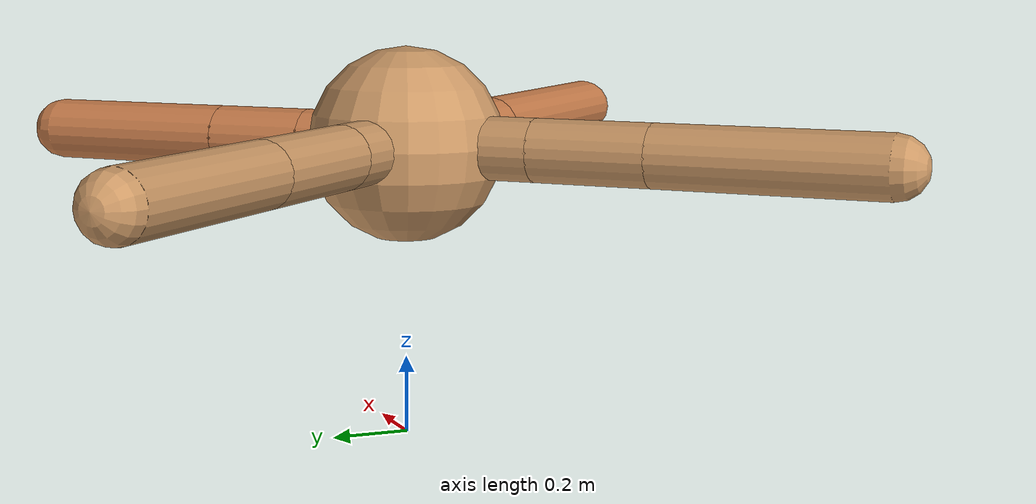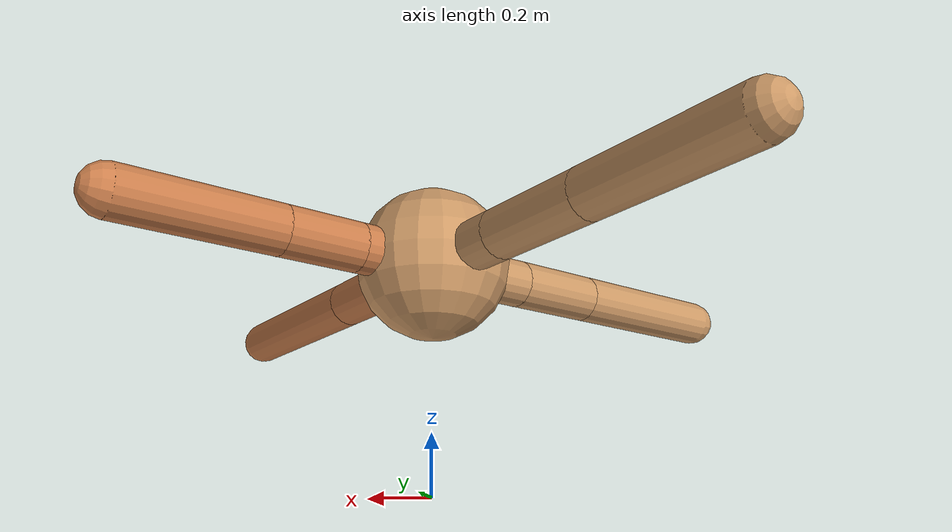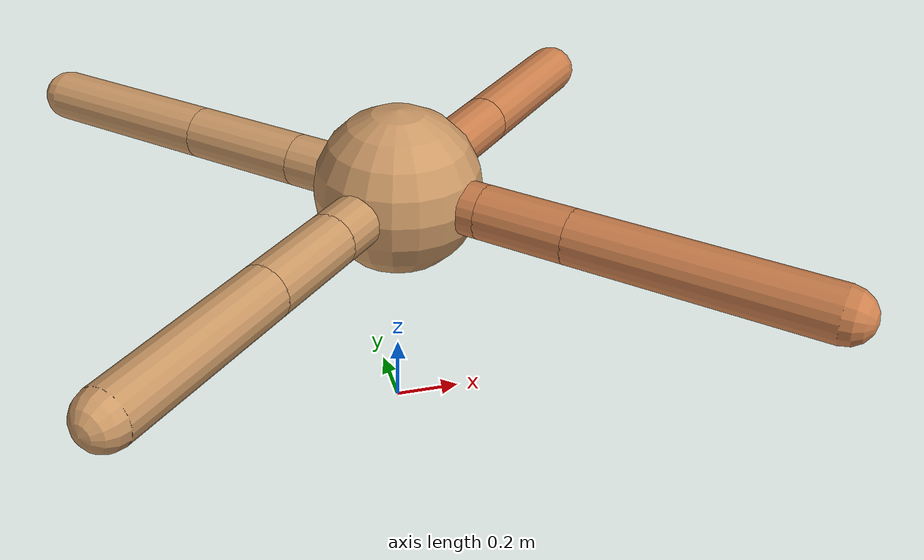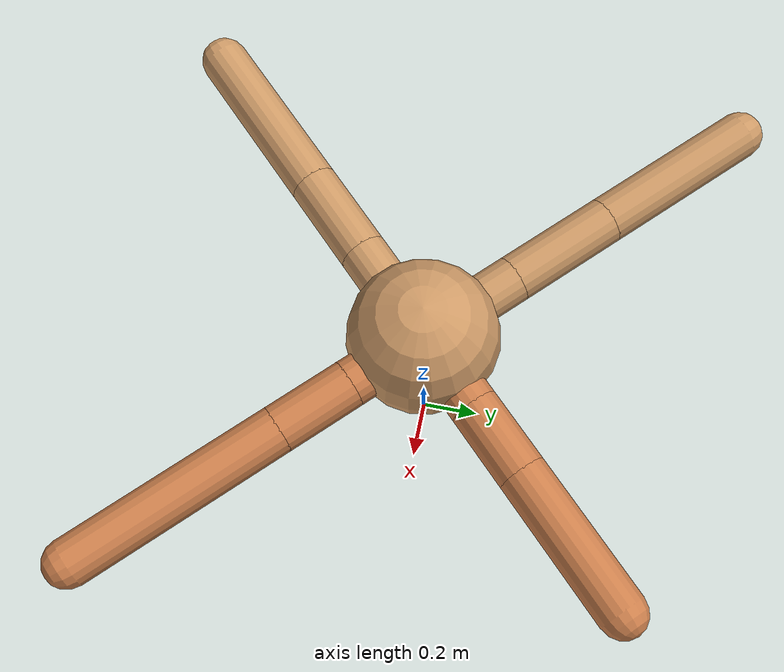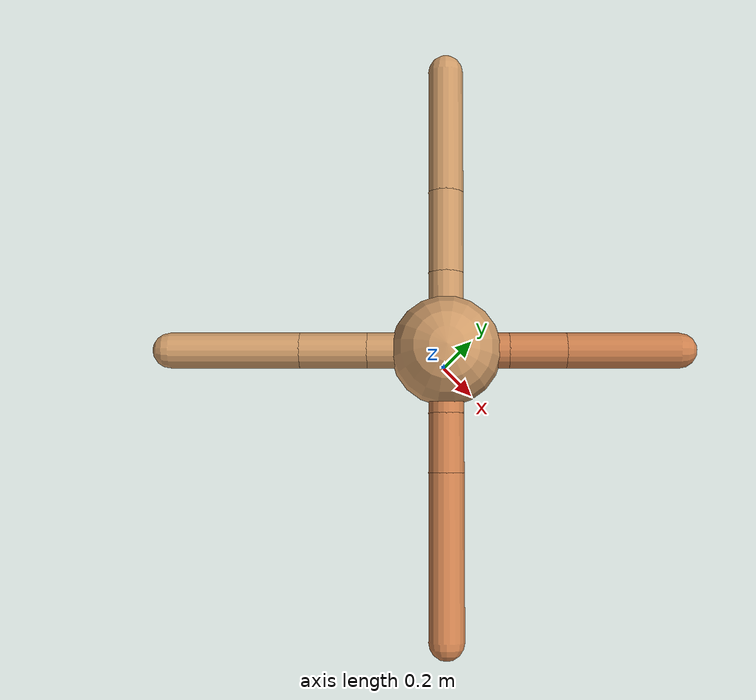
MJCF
<mujoco model="ant">
  <compiler angle="degree" coordinate="local" inertiafromgeom="true" />
  <option integrator="RK4" timestep="0.01" />
  <custom>
    <numeric data="0.0 0.0 0.55 1.0 0.0 0.0 0.0 0.0 1.0 0.0 -1.0 0.0 -1.0 0.0 1.0" name="init_qpos" />
  </custom>
  <default>
    <joint armature="1" damping="1" limited="true" />
    <geom conaffinity="0" condim="3" density="5.0" friction="1.5 0.1 0.1" margin="0.01" rgba="0.8 0.6 0.4 1" />
  </default>
  <worldbody>
    <body name="torso" pos="0 0 0.75">
      <geom name="torso_geom" pos="0 0 0" size="0.25" type="sphere" />

      <body name="front_left_leg" pos="0 0 0">
        <geom fromto="0.0 0.0 0.0 0.2 0.2 0.0" name="aux_1_geom" size="0.08" type="capsule" rgba=".8 .5 .3 1" />
        <body name="aux_1" pos="0.2 0.2 0.0">
          <joint axis="0 0 1" name="hip_1" pos="0.0 0.0 0.0" range="-40 40" type="hinge" />
          <geom fromto="0.0 0.0 0.0 0.18119450522242317 0.18119450522242317 0.0" name="left_leg_geom" size="0.08" type="capsule" rgba=".8 .5 .3 1" />
          <body pos="0.18119450522242317 0.18119450522242317 0.0" name="front_left_foot">
            <joint axis="-1 1 0" name="ankle_1" pos="0.0 0.0 0.0" range="30 100" type="hinge" />
            <geom fromto="0.0 0.0 0.0 0.3601720654955616 0.3601720654955616 0.0" name="left_ankle_geom" size="0.08" type="capsule" rgba=".8 .5 .3 1" />
          </body>
        </body>
      </body>
      <body name="front_right_leg" pos="0 0 0">
        <geom fromto="0.0 0.0 0.0 -0.2501123561889066 0.2501123561889066 0.0" name="aux_2_geom" size="0.08" type="capsule" />
        <body name="aux_2" pos="-0.2501123561889066 0.2501123561889066 0.0">
          <joint axis="0 0 1" name="hip_2" pos="0.0 0.0 0.0" range="-40 40" type="hinge" />
          <geom fromto="0.0 0.0 0.0 -0.2646549791656639 0.2646549791656639 0.0" name="right_leg_geom" size="0.08" type="capsule" />
          <body pos="-0.2646549791656639 0.2646549791656639 0.0" name="front_right_foot">
            <joint axis="1 1 0" name="ankle_2" pos="0.0 0.0 0.0" range="-100 -30" type="hinge" />
            <geom fromto="0.0 0.0 0.0 -0.4040856895658964 0.4040856895658964 0.0" name="right_ankle_geom" size="0.08" type="capsule" />
          </body>
        </body>
      </body>
      <body name="left_back_leg" pos="0 0 0">
        <geom fromto="0.0 0.0 0.0 -0.25066934634780724 -0.25066934634780724 0.0" name="aux_3_geom" size="0.08" type="capsule" />
        <body name="aux_3" pos="-0.25066934634780724 -0.25066934634780724 0.0">
          <joint axis="0 0 1" name="hip_3" pos="0.0 0.0 0.0" range="-40 40" type="hinge" />
          <geom fromto="0.0 0.0 0.0 -0.21364117057461432 -0.21364117057461432 0.0" name="back_leg_geom" size="0.08" type="capsule" />
          <body pos="-0.21364117057461432 -0.21364117057461432 0.0" name="left_back_foot">
            <joint axis="-1 1 0" name="ankle_3" pos="0.0 0.0 0.0" range="-100 -30" type="hinge" />
            <geom fromto="0.0 0.0 0.0 -0.4113150078148971 -0.4113150078148971 0.0" name="third_ankle_geom" size="0.08" type="capsule" />
          </body>
        </body>
      </body>
      <body name="right_back_leg" pos="0 0 0">
        <geom fromto="0.0 0.0 0.0 0.2 -0.2 0.0" name="aux_4_geom" size="0.08" type="capsule" rgba=".8 .5 .3 1" />
        <body name="aux_4" pos="0.2 -0.2 0.0">
          <joint axis="0 0 1" name="hip_4" pos="0.0 0.0 0.0" range="-40 40" type="hinge" />
          <geom fromto="0.0 0.0 0.0 0.18684319897144896 -0.18684319897144896 0.0" name="rightback_leg_geom" size="0.08" type="capsule" rgba=".8 .5 .3 1" />
          <body pos="0.18684319897144896 -0.18684319897144896 0.0" name="right_back_foot">
            <joint axis="1 1 0" name="ankle_4" pos="0.0 0.0 0.0" range="30 100" type="hinge" />
            <geom fromto="0.0 0.0 0.0 0.5198977468856689 -0.5198977468856689 0.0" name="fourth_ankle_geom" size="0.08" type="capsule" rgba=".8 .5 .3 1" />
          </body>
        </body>
      </body>
    </body>
  </worldbody>
  <actuator>
    <motor ctrllimited="true" ctrlrange="-1.0 1.0" joint="hip_4" gear="150" />
    <motor ctrllimited="true" ctrlrange="-1.0 1.0" joint="ankle_4" gear="150" />
    <motor ctrllimited="true" ctrlrange="-1.0 1.0" joint="hip_1" gear="150" />
    <motor ctrllimited="true" ctrlrange="-1.0 1.0" joint="ankle_1" gear="150" />
    <motor ctrllimited="true" ctrlrange="-1.0 1.0" joint="hip_2" gear="150" />
    <motor ctrllimited="true" ctrlrange="-1.0 1.0" joint="ankle_2" gear="150" />
    <motor ctrllimited="true" ctrlrange="-1.0 1.0" joint="hip_3" gear="150" />
    <motor ctrllimited="true" ctrlrange="-1.0 1.0" joint="ankle_3" gear="150" />
  </actuator>
</mujoco>
